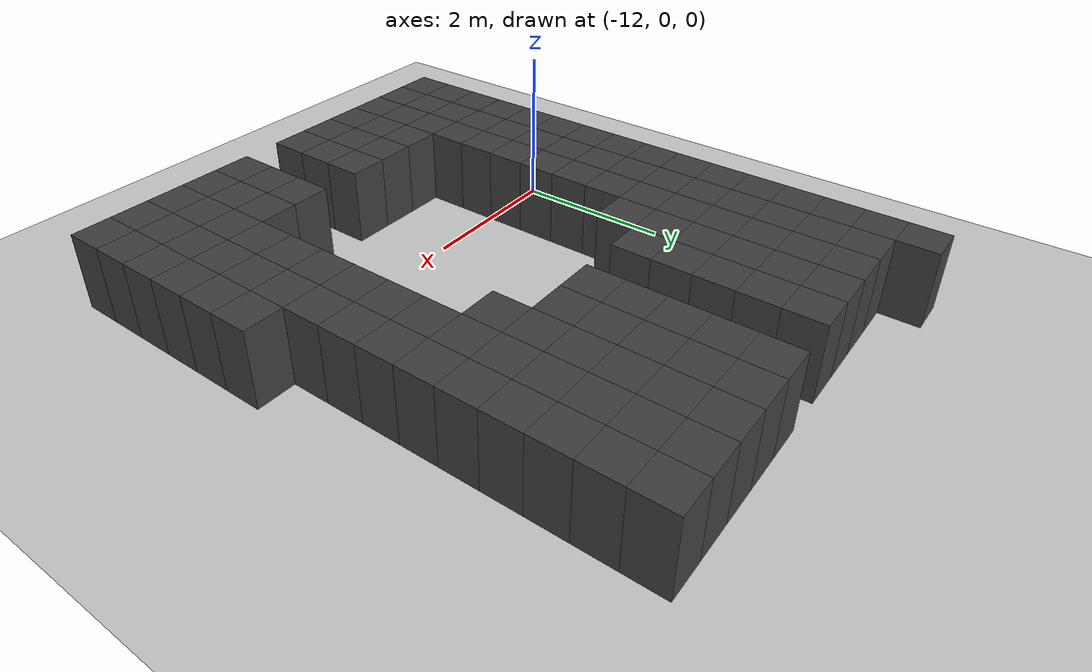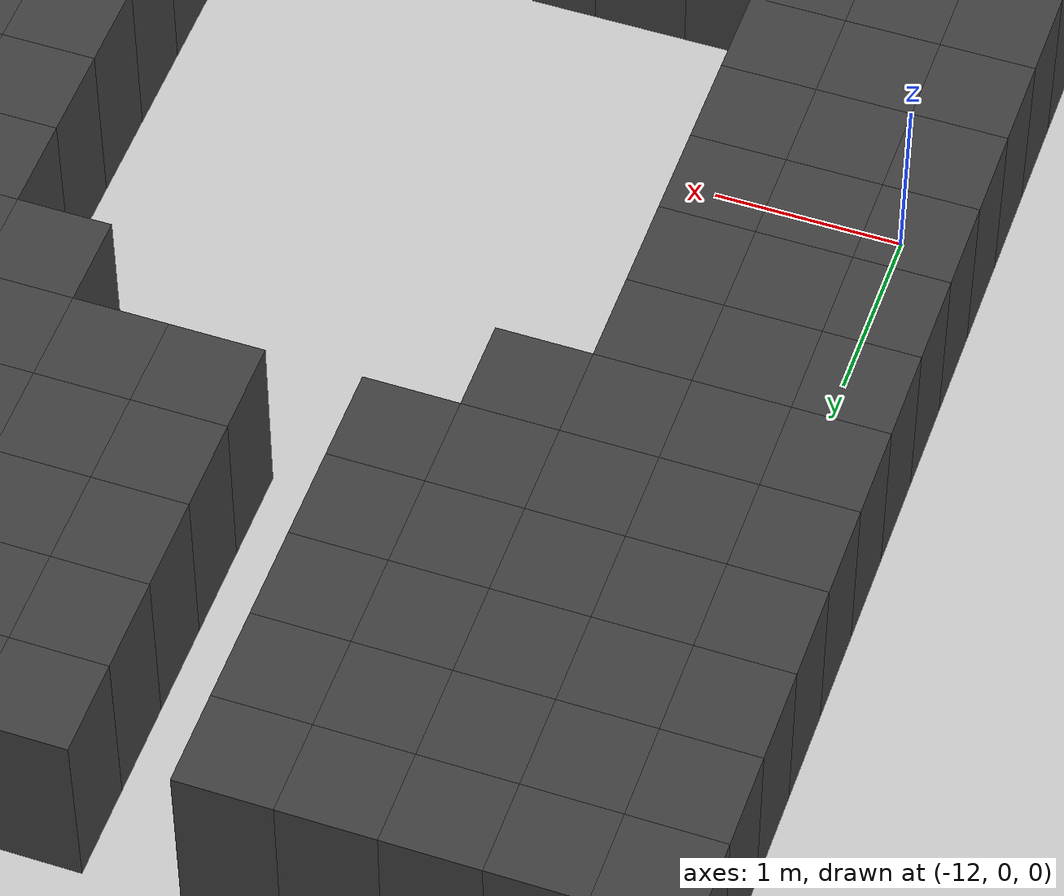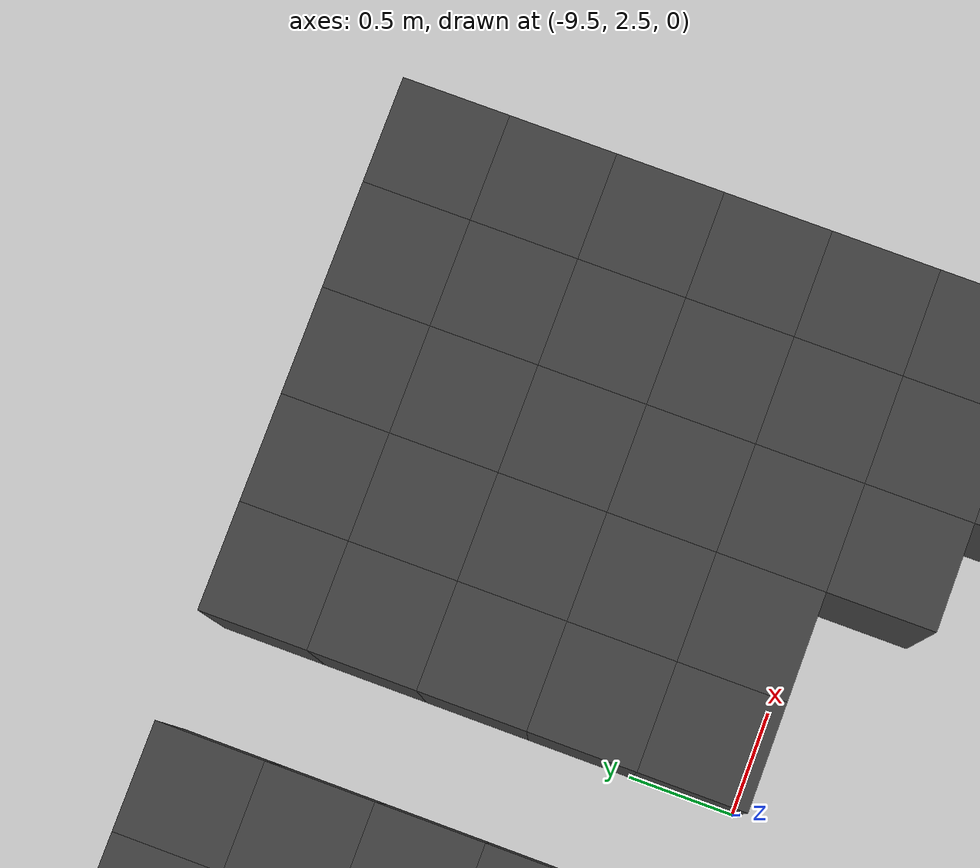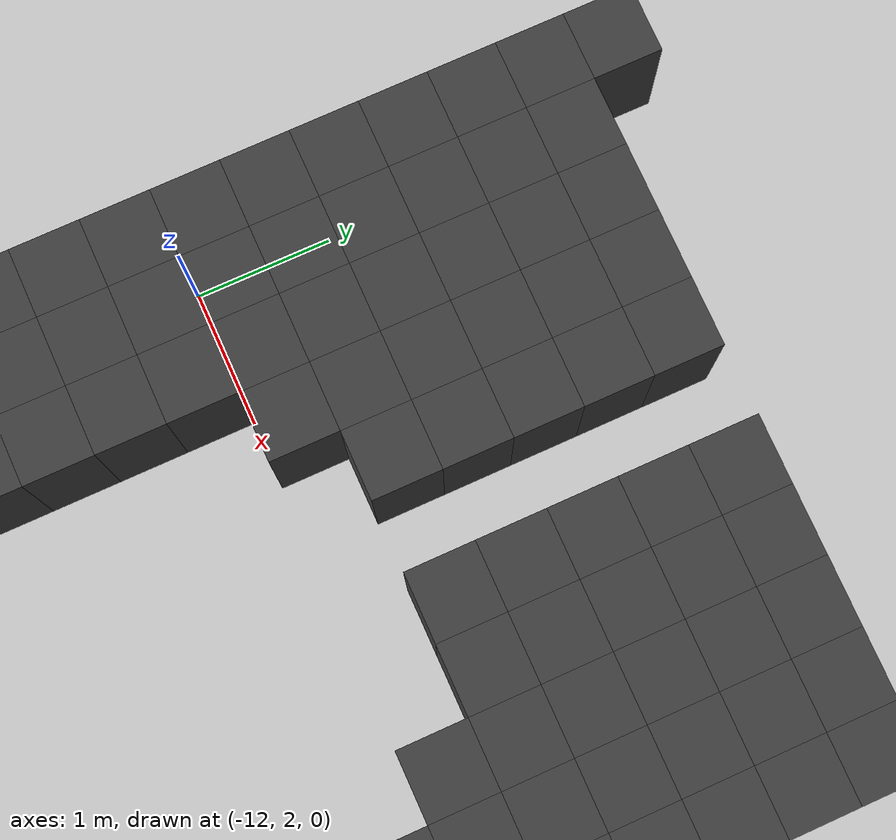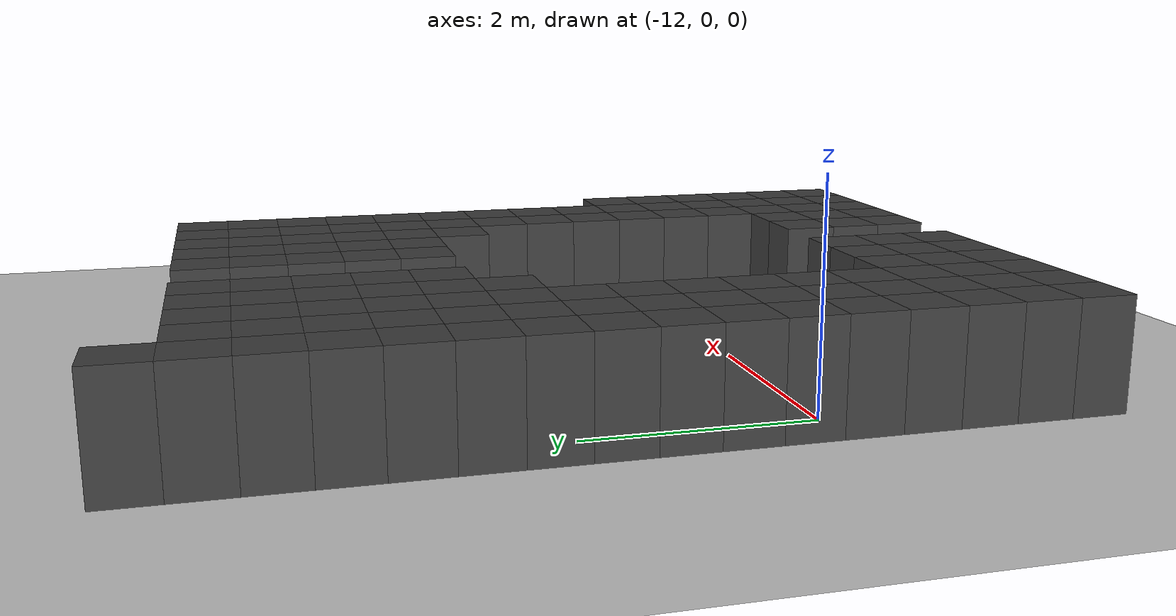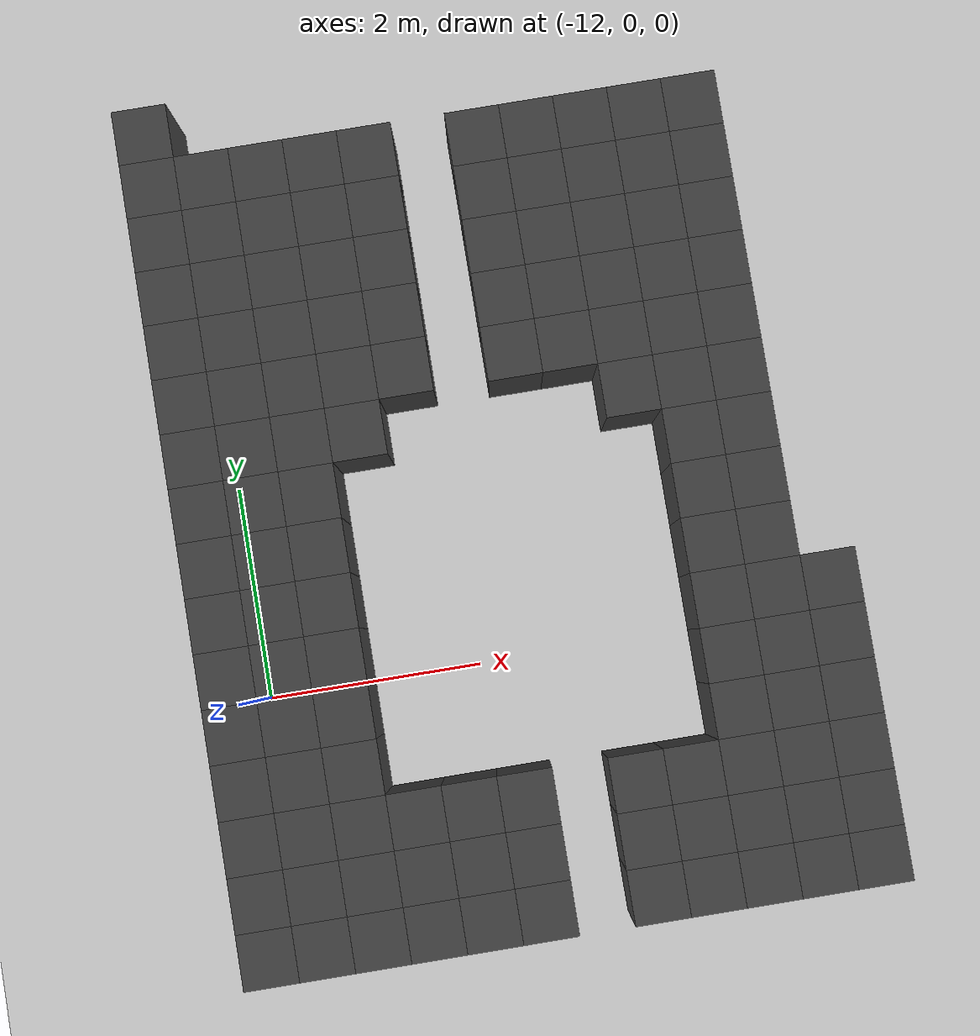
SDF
<sdf version="1.7">
 <world name="map_14802">
  <model name="ground_plane">
   <static>true</static>
   <link name="link">
    <collision name="collision">
     <geometry><plane><normal>0 0 1</normal><size>200 200</size></plane></geometry>
    </collision>
    <visual name="visual">
     <geometry><plane><normal>0 0 1</normal><size>200 200</size></plane></geometry>
     <material><ambient>0.8 0.8 0.8 1</ambient><diffuse>0.8 0.8 0.8 1</diffuse></material>
    </visual>
   </link>
  </model>
  <model name="maze_environment">
   <static>true</static>
   <link name="wall_486">
    <pose>-12.250 5.250 0.500 0 0 0</pose>
    <collision name="col"><geometry><box><size>0.5 0.5 1.0</size></box></geometry></collision>
    <visual name="vis">
     <geometry><box><size>0.5 0.5 1.0</size></box></geometry>
     <material><ambient>0.15 0.15 0.15 1</ambient><diffuse>0.25 0.25 0.25 1</diffuse></material>
    </visual>
   </link>
   <link name="wall_526">
    <pose>-12.250 4.750 0.500 0 0 0</pose>
    <collision name="col"><geometry><box><size>0.5 0.5 1.0</size></box></geometry></collision>
    <visual name="vis">
     <geometry><box><size>0.5 0.5 1.0</size></box></geometry>
     <material><ambient>0.15 0.15 0.15 1</ambient><diffuse>0.25 0.25 0.25 1</diffuse></material>
    </visual>
   </link>
   <link name="wall_527">
    <pose>-11.750 4.750 0.500 0 0 0</pose>
    <collision name="col"><geometry><box><size>0.5 0.5 1.0</size></box></geometry></collision>
    <visual name="vis">
     <geometry><box><size>0.5 0.5 1.0</size></box></geometry>
     <material><ambient>0.15 0.15 0.15 1</ambient><diffuse>0.25 0.25 0.25 1</diffuse></material>
    </visual>
   </link>
   <link name="wall_528">
    <pose>-11.250 4.750 0.500 0 0 0</pose>
    <collision name="col"><geometry><box><size>0.5 0.5 1.0</size></box></geometry></collision>
    <visual name="vis">
     <geometry><box><size>0.5 0.5 1.0</size></box></geometry>
     <material><ambient>0.15 0.15 0.15 1</ambient><diffuse>0.25 0.25 0.25 1</diffuse></material>
    </visual>
   </link>
   <link name="wall_529">
    <pose>-10.750 4.750 0.500 0 0 0</pose>
    <collision name="col"><geometry><box><size>0.5 0.5 1.0</size></box></geometry></collision>
    <visual name="vis">
     <geometry><box><size>0.5 0.5 1.0</size></box></geometry>
     <material><ambient>0.15 0.15 0.15 1</ambient><diffuse>0.25 0.25 0.25 1</diffuse></material>
    </visual>
   </link>
   <link name="wall_530">
    <pose>-10.250 4.750 0.500 0 0 0</pose>
    <collision name="col"><geometry><box><size>0.5 0.5 1.0</size></box></geometry></collision>
    <visual name="vis">
     <geometry><box><size>0.5 0.5 1.0</size></box></geometry>
     <material><ambient>0.15 0.15 0.15 1</ambient><diffuse>0.25 0.25 0.25 1</diffuse></material>
    </visual>
   </link>
   <link name="wall_531">
    <pose>-9.250 4.750 0.500 0 0 0</pose>
    <collision name="col"><geometry><box><size>0.5 0.5 1.0</size></box></geometry></collision>
    <visual name="vis">
     <geometry><box><size>0.5 0.5 1.0</size></box></geometry>
     <material><ambient>0.15 0.15 0.15 1</ambient><diffuse>0.25 0.25 0.25 1</diffuse></material>
    </visual>
   </link>
   <link name="wall_532">
    <pose>-8.750 4.750 0.500 0 0 0</pose>
    <collision name="col"><geometry><box><size>0.5 0.5 1.0</size></box></geometry></collision>
    <visual name="vis">
     <geometry><box><size>0.5 0.5 1.0</size></box></geometry>
     <material><ambient>0.15 0.15 0.15 1</ambient><diffuse>0.25 0.25 0.25 1</diffuse></material>
    </visual>
   </link>
   <link name="wall_533">
    <pose>-8.250 4.750 0.500 0 0 0</pose>
    <collision name="col"><geometry><box><size>0.5 0.5 1.0</size></box></geometry></collision>
    <visual name="vis">
     <geometry><box><size>0.5 0.5 1.0</size></box></geometry>
     <material><ambient>0.15 0.15 0.15 1</ambient><diffuse>0.25 0.25 0.25 1</diffuse></material>
    </visual>
   </link>
   <link name="wall_534">
    <pose>-7.750 4.750 0.500 0 0 0</pose>
    <collision name="col"><geometry><box><size>0.5 0.5 1.0</size></box></geometry></collision>
    <visual name="vis">
     <geometry><box><size>0.5 0.5 1.0</size></box></geometry>
     <material><ambient>0.15 0.15 0.15 1</ambient><diffuse>0.25 0.25 0.25 1</diffuse></material>
    </visual>
   </link>
   <link name="wall_535">
    <pose>-7.250 4.750 0.500 0 0 0</pose>
    <collision name="col"><geometry><box><size>0.5 0.5 1.0</size></box></geometry></collision>
    <visual name="vis">
     <geometry><box><size>0.5 0.5 1.0</size></box></geometry>
     <material><ambient>0.15 0.15 0.15 1</ambient><diffuse>0.25 0.25 0.25 1</diffuse></material>
    </visual>
   </link>
   <link name="wall_566">
    <pose>-12.250 4.250 0.500 0 0 0</pose>
    <collision name="col"><geometry><box><size>0.5 0.5 1.0</size></box></geometry></collision>
    <visual name="vis">
     <geometry><box><size>0.5 0.5 1.0</size></box></geometry>
     <material><ambient>0.15 0.15 0.15 1</ambient><diffuse>0.25 0.25 0.25 1</diffuse></material>
    </visual>
   </link>
   <link name="wall_567">
    <pose>-11.750 4.250 0.500 0 0 0</pose>
    <collision name="col"><geometry><box><size>0.5 0.5 1.0</size></box></geometry></collision>
    <visual name="vis">
     <geometry><box><size>0.5 0.5 1.0</size></box></geometry>
     <material><ambient>0.15 0.15 0.15 1</ambient><diffuse>0.25 0.25 0.25 1</diffuse></material>
    </visual>
   </link>
   <link name="wall_568">
    <pose>-11.250 4.250 0.500 0 0 0</pose>
    <collision name="col"><geometry><box><size>0.5 0.5 1.0</size></box></geometry></collision>
    <visual name="vis">
     <geometry><box><size>0.5 0.5 1.0</size></box></geometry>
     <material><ambient>0.15 0.15 0.15 1</ambient><diffuse>0.25 0.25 0.25 1</diffuse></material>
    </visual>
   </link>
   <link name="wall_569">
    <pose>-10.750 4.250 0.500 0 0 0</pose>
    <collision name="col"><geometry><box><size>0.5 0.5 1.0</size></box></geometry></collision>
    <visual name="vis">
     <geometry><box><size>0.5 0.5 1.0</size></box></geometry>
     <material><ambient>0.15 0.15 0.15 1</ambient><diffuse>0.25 0.25 0.25 1</diffuse></material>
    </visual>
   </link>
   <link name="wall_570">
    <pose>-10.250 4.250 0.500 0 0 0</pose>
    <collision name="col"><geometry><box><size>0.5 0.5 1.0</size></box></geometry></collision>
    <visual name="vis">
     <geometry><box><size>0.5 0.5 1.0</size></box></geometry>
     <material><ambient>0.15 0.15 0.15 1</ambient><diffuse>0.25 0.25 0.25 1</diffuse></material>
    </visual>
   </link>
   <link name="wall_571">
    <pose>-9.250 4.250 0.500 0 0 0</pose>
    <collision name="col"><geometry><box><size>0.5 0.5 1.0</size></box></geometry></collision>
    <visual name="vis">
     <geometry><box><size>0.5 0.5 1.0</size></box></geometry>
     <material><ambient>0.15 0.15 0.15 1</ambient><diffuse>0.25 0.25 0.25 1</diffuse></material>
    </visual>
   </link>
   <link name="wall_572">
    <pose>-8.750 4.250 0.500 0 0 0</pose>
    <collision name="col"><geometry><box><size>0.5 0.5 1.0</size></box></geometry></collision>
    <visual name="vis">
     <geometry><box><size>0.5 0.5 1.0</size></box></geometry>
     <material><ambient>0.15 0.15 0.15 1</ambient><diffuse>0.25 0.25 0.25 1</diffuse></material>
    </visual>
   </link>
   <link name="wall_573">
    <pose>-8.250 4.250 0.500 0 0 0</pose>
    <collision name="col"><geometry><box><size>0.5 0.5 1.0</size></box></geometry></collision>
    <visual name="vis">
     <geometry><box><size>0.5 0.5 1.0</size></box></geometry>
     <material><ambient>0.15 0.15 0.15 1</ambient><diffuse>0.25 0.25 0.25 1</diffuse></material>
    </visual>
   </link>
   <link name="wall_574">
    <pose>-7.750 4.250 0.500 0 0 0</pose>
    <collision name="col"><geometry><box><size>0.5 0.5 1.0</size></box></geometry></collision>
    <visual name="vis">
     <geometry><box><size>0.5 0.5 1.0</size></box></geometry>
     <material><ambient>0.15 0.15 0.15 1</ambient><diffuse>0.25 0.25 0.25 1</diffuse></material>
    </visual>
   </link>
   <link name="wall_575">
    <pose>-7.250 4.250 0.500 0 0 0</pose>
    <collision name="col"><geometry><box><size>0.5 0.5 1.0</size></box></geometry></collision>
    <visual name="vis">
     <geometry><box><size>0.5 0.5 1.0</size></box></geometry>
     <material><ambient>0.15 0.15 0.15 1</ambient><diffuse>0.25 0.25 0.25 1</diffuse></material>
    </visual>
   </link>
   <link name="wall_606">
    <pose>-12.250 3.750 0.500 0 0 0</pose>
    <collision name="col"><geometry><box><size>0.5 0.5 1.0</size></box></geometry></collision>
    <visual name="vis">
     <geometry><box><size>0.5 0.5 1.0</size></box></geometry>
     <material><ambient>0.15 0.15 0.15 1</ambient><diffuse>0.25 0.25 0.25 1</diffuse></material>
    </visual>
   </link>
   <link name="wall_607">
    <pose>-11.750 3.750 0.500 0 0 0</pose>
    <collision name="col"><geometry><box><size>0.5 0.5 1.0</size></box></geometry></collision>
    <visual name="vis">
     <geometry><box><size>0.5 0.5 1.0</size></box></geometry>
     <material><ambient>0.15 0.15 0.15 1</ambient><diffuse>0.25 0.25 0.25 1</diffuse></material>
    </visual>
   </link>
   <link name="wall_608">
    <pose>-11.250 3.750 0.500 0 0 0</pose>
    <collision name="col"><geometry><box><size>0.5 0.5 1.0</size></box></geometry></collision>
    <visual name="vis">
     <geometry><box><size>0.5 0.5 1.0</size></box></geometry>
     <material><ambient>0.15 0.15 0.15 1</ambient><diffuse>0.25 0.25 0.25 1</diffuse></material>
    </visual>
   </link>
   <link name="wall_609">
    <pose>-10.750 3.750 0.500 0 0 0</pose>
    <collision name="col"><geometry><box><size>0.5 0.5 1.0</size></box></geometry></collision>
    <visual name="vis">
     <geometry><box><size>0.5 0.5 1.0</size></box></geometry>
     <material><ambient>0.15 0.15 0.15 1</ambient><diffuse>0.25 0.25 0.25 1</diffuse></material>
    </visual>
   </link>
   <link name="wall_610">
    <pose>-10.250 3.750 0.500 0 0 0</pose>
    <collision name="col"><geometry><box><size>0.5 0.5 1.0</size></box></geometry></collision>
    <visual name="vis">
     <geometry><box><size>0.5 0.5 1.0</size></box></geometry>
     <material><ambient>0.15 0.15 0.15 1</ambient><diffuse>0.25 0.25 0.25 1</diffuse></material>
    </visual>
   </link>
   <link name="wall_611">
    <pose>-9.250 3.750 0.500 0 0 0</pose>
    <collision name="col"><geometry><box><size>0.5 0.5 1.0</size></box></geometry></collision>
    <visual name="vis">
     <geometry><box><size>0.5 0.5 1.0</size></box></geometry>
     <material><ambient>0.15 0.15 0.15 1</ambient><diffuse>0.25 0.25 0.25 1</diffuse></material>
    </visual>
   </link>
   <link name="wall_612">
    <pose>-8.750 3.750 0.500 0 0 0</pose>
    <collision name="col"><geometry><box><size>0.5 0.5 1.0</size></box></geometry></collision>
    <visual name="vis">
     <geometry><box><size>0.5 0.5 1.0</size></box></geometry>
     <material><ambient>0.15 0.15 0.15 1</ambient><diffuse>0.25 0.25 0.25 1</diffuse></material>
    </visual>
   </link>
   <link name="wall_613">
    <pose>-8.250 3.750 0.500 0 0 0</pose>
    <collision name="col"><geometry><box><size>0.5 0.5 1.0</size></box></geometry></collision>
    <visual name="vis">
     <geometry><box><size>0.5 0.5 1.0</size></box></geometry>
     <material><ambient>0.15 0.15 0.15 1</ambient><diffuse>0.25 0.25 0.25 1</diffuse></material>
    </visual>
   </link>
   <link name="wall_614">
    <pose>-7.750 3.750 0.500 0 0 0</pose>
    <collision name="col"><geometry><box><size>0.5 0.5 1.0</size></box></geometry></collision>
    <visual name="vis">
     <geometry><box><size>0.5 0.5 1.0</size></box></geometry>
     <material><ambient>0.15 0.15 0.15 1</ambient><diffuse>0.25 0.25 0.25 1</diffuse></material>
    </visual>
   </link>
   <link name="wall_615">
    <pose>-7.250 3.750 0.500 0 0 0</pose>
    <collision name="col"><geometry><box><size>0.5 0.5 1.0</size></box></geometry></collision>
    <visual name="vis">
     <geometry><box><size>0.5 0.5 1.0</size></box></geometry>
     <material><ambient>0.15 0.15 0.15 1</ambient><diffuse>0.25 0.25 0.25 1</diffuse></material>
    </visual>
   </link>
   <link name="wall_646">
    <pose>-12.250 3.250 0.500 0 0 0</pose>
    <collision name="col"><geometry><box><size>0.5 0.5 1.0</size></box></geometry></collision>
    <visual name="vis">
     <geometry><box><size>0.5 0.5 1.0</size></box></geometry>
     <material><ambient>0.15 0.15 0.15 1</ambient><diffuse>0.25 0.25 0.25 1</diffuse></material>
    </visual>
   </link>
   <link name="wall_647">
    <pose>-11.750 3.250 0.500 0 0 0</pose>
    <collision name="col"><geometry><box><size>0.5 0.5 1.0</size></box></geometry></collision>
    <visual name="vis">
     <geometry><box><size>0.5 0.5 1.0</size></box></geometry>
     <material><ambient>0.15 0.15 0.15 1</ambient><diffuse>0.25 0.25 0.25 1</diffuse></material>
    </visual>
   </link>
   <link name="wall_648">
    <pose>-11.250 3.250 0.500 0 0 0</pose>
    <collision name="col"><geometry><box><size>0.5 0.5 1.0</size></box></geometry></collision>
    <visual name="vis">
     <geometry><box><size>0.5 0.5 1.0</size></box></geometry>
     <material><ambient>0.15 0.15 0.15 1</ambient><diffuse>0.25 0.25 0.25 1</diffuse></material>
    </visual>
   </link>
   <link name="wall_649">
    <pose>-10.750 3.250 0.500 0 0 0</pose>
    <collision name="col"><geometry><box><size>0.5 0.5 1.0</size></box></geometry></collision>
    <visual name="vis">
     <geometry><box><size>0.5 0.5 1.0</size></box></geometry>
     <material><ambient>0.15 0.15 0.15 1</ambient><diffuse>0.25 0.25 0.25 1</diffuse></material>
    </visual>
   </link>
   <link name="wall_650">
    <pose>-10.250 3.250 0.500 0 0 0</pose>
    <collision name="col"><geometry><box><size>0.5 0.5 1.0</size></box></geometry></collision>
    <visual name="vis">
     <geometry><box><size>0.5 0.5 1.0</size></box></geometry>
     <material><ambient>0.15 0.15 0.15 1</ambient><diffuse>0.25 0.25 0.25 1</diffuse></material>
    </visual>
   </link>
   <link name="wall_651">
    <pose>-9.250 3.250 0.500 0 0 0</pose>
    <collision name="col"><geometry><box><size>0.5 0.5 1.0</size></box></geometry></collision>
    <visual name="vis">
     <geometry><box><size>0.5 0.5 1.0</size></box></geometry>
     <material><ambient>0.15 0.15 0.15 1</ambient><diffuse>0.25 0.25 0.25 1</diffuse></material>
    </visual>
   </link>
   <link name="wall_652">
    <pose>-8.750 3.250 0.500 0 0 0</pose>
    <collision name="col"><geometry><box><size>0.5 0.5 1.0</size></box></geometry></collision>
    <visual name="vis">
     <geometry><box><size>0.5 0.5 1.0</size></box></geometry>
     <material><ambient>0.15 0.15 0.15 1</ambient><diffuse>0.25 0.25 0.25 1</diffuse></material>
    </visual>
   </link>
   <link name="wall_653">
    <pose>-8.250 3.250 0.500 0 0 0</pose>
    <collision name="col"><geometry><box><size>0.5 0.5 1.0</size></box></geometry></collision>
    <visual name="vis">
     <geometry><box><size>0.5 0.5 1.0</size></box></geometry>
     <material><ambient>0.15 0.15 0.15 1</ambient><diffuse>0.25 0.25 0.25 1</diffuse></material>
    </visual>
   </link>
   <link name="wall_654">
    <pose>-7.750 3.250 0.500 0 0 0</pose>
    <collision name="col"><geometry><box><size>0.5 0.5 1.0</size></box></geometry></collision>
    <visual name="vis">
     <geometry><box><size>0.5 0.5 1.0</size></box></geometry>
     <material><ambient>0.15 0.15 0.15 1</ambient><diffuse>0.25 0.25 0.25 1</diffuse></material>
    </visual>
   </link>
   <link name="wall_655">
    <pose>-7.250 3.250 0.500 0 0 0</pose>
    <collision name="col"><geometry><box><size>0.5 0.5 1.0</size></box></geometry></collision>
    <visual name="vis">
     <geometry><box><size>0.5 0.5 1.0</size></box></geometry>
     <material><ambient>0.15 0.15 0.15 1</ambient><diffuse>0.25 0.25 0.25 1</diffuse></material>
    </visual>
   </link>
   <link name="wall_687">
    <pose>-12.250 2.750 0.500 0 0 0</pose>
    <collision name="col"><geometry><box><size>0.5 0.5 1.0</size></box></geometry></collision>
    <visual name="vis">
     <geometry><box><size>0.5 0.5 1.0</size></box></geometry>
     <material><ambient>0.15 0.15 0.15 1</ambient><diffuse>0.25 0.25 0.25 1</diffuse></material>
    </visual>
   </link>
   <link name="wall_688">
    <pose>-11.750 2.750 0.500 0 0 0</pose>
    <collision name="col"><geometry><box><size>0.5 0.5 1.0</size></box></geometry></collision>
    <visual name="vis">
     <geometry><box><size>0.5 0.5 1.0</size></box></geometry>
     <material><ambient>0.15 0.15 0.15 1</ambient><diffuse>0.25 0.25 0.25 1</diffuse></material>
    </visual>
   </link>
   <link name="wall_689">
    <pose>-11.250 2.750 0.500 0 0 0</pose>
    <collision name="col"><geometry><box><size>0.5 0.5 1.0</size></box></geometry></collision>
    <visual name="vis">
     <geometry><box><size>0.5 0.5 1.0</size></box></geometry>
     <material><ambient>0.15 0.15 0.15 1</ambient><diffuse>0.25 0.25 0.25 1</diffuse></material>
    </visual>
   </link>
   <link name="wall_690">
    <pose>-10.750 2.750 0.500 0 0 0</pose>
    <collision name="col"><geometry><box><size>0.5 0.5 1.0</size></box></geometry></collision>
    <visual name="vis">
     <geometry><box><size>0.5 0.5 1.0</size></box></geometry>
     <material><ambient>0.15 0.15 0.15 1</ambient><diffuse>0.25 0.25 0.25 1</diffuse></material>
    </visual>
   </link>
   <link name="wall_691">
    <pose>-10.250 2.750 0.500 0 0 0</pose>
    <collision name="col"><geometry><box><size>0.5 0.5 1.0</size></box></geometry></collision>
    <visual name="vis">
     <geometry><box><size>0.5 0.5 1.0</size></box></geometry>
     <material><ambient>0.15 0.15 0.15 1</ambient><diffuse>0.25 0.25 0.25 1</diffuse></material>
    </visual>
   </link>
   <link name="wall_692">
    <pose>-9.250 2.750 0.500 0 0 0</pose>
    <collision name="col"><geometry><box><size>0.5 0.5 1.0</size></box></geometry></collision>
    <visual name="vis">
     <geometry><box><size>0.5 0.5 1.0</size></box></geometry>
     <material><ambient>0.15 0.15 0.15 1</ambient><diffuse>0.25 0.25 0.25 1</diffuse></material>
    </visual>
   </link>
   <link name="wall_693">
    <pose>-8.750 2.750 0.500 0 0 0</pose>
    <collision name="col"><geometry><box><size>0.5 0.5 1.0</size></box></geometry></collision>
    <visual name="vis">
     <geometry><box><size>0.5 0.5 1.0</size></box></geometry>
     <material><ambient>0.15 0.15 0.15 1</ambient><diffuse>0.25 0.25 0.25 1</diffuse></material>
    </visual>
   </link>
   <link name="wall_694">
    <pose>-8.250 2.750 0.500 0 0 0</pose>
    <collision name="col"><geometry><box><size>0.5 0.5 1.0</size></box></geometry></collision>
    <visual name="vis">
     <geometry><box><size>0.5 0.5 1.0</size></box></geometry>
     <material><ambient>0.15 0.15 0.15 1</ambient><diffuse>0.25 0.25 0.25 1</diffuse></material>
    </visual>
   </link>
   <link name="wall_695">
    <pose>-7.750 2.750 0.500 0 0 0</pose>
    <collision name="col"><geometry><box><size>0.5 0.5 1.0</size></box></geometry></collision>
    <visual name="vis">
     <geometry><box><size>0.5 0.5 1.0</size></box></geometry>
     <material><ambient>0.15 0.15 0.15 1</ambient><diffuse>0.25 0.25 0.25 1</diffuse></material>
    </visual>
   </link>
   <link name="wall_696">
    <pose>-7.250 2.750 0.500 0 0 0</pose>
    <collision name="col"><geometry><box><size>0.5 0.5 1.0</size></box></geometry></collision>
    <visual name="vis">
     <geometry><box><size>0.5 0.5 1.0</size></box></geometry>
     <material><ambient>0.15 0.15 0.15 1</ambient><diffuse>0.25 0.25 0.25 1</diffuse></material>
    </visual>
   </link>
   <link name="wall_727">
    <pose>-12.250 2.250 0.500 0 0 0</pose>
    <collision name="col"><geometry><box><size>0.5 0.5 1.0</size></box></geometry></collision>
    <visual name="vis">
     <geometry><box><size>0.5 0.5 1.0</size></box></geometry>
     <material><ambient>0.15 0.15 0.15 1</ambient><diffuse>0.25 0.25 0.25 1</diffuse></material>
    </visual>
   </link>
   <link name="wall_728">
    <pose>-11.750 2.250 0.500 0 0 0</pose>
    <collision name="col"><geometry><box><size>0.5 0.5 1.0</size></box></geometry></collision>
    <visual name="vis">
     <geometry><box><size>0.5 0.5 1.0</size></box></geometry>
     <material><ambient>0.15 0.15 0.15 1</ambient><diffuse>0.25 0.25 0.25 1</diffuse></material>
    </visual>
   </link>
   <link name="wall_729">
    <pose>-11.250 2.250 0.500 0 0 0</pose>
    <collision name="col"><geometry><box><size>0.5 0.5 1.0</size></box></geometry></collision>
    <visual name="vis">
     <geometry><box><size>0.5 0.5 1.0</size></box></geometry>
     <material><ambient>0.15 0.15 0.15 1</ambient><diffuse>0.25 0.25 0.25 1</diffuse></material>
    </visual>
   </link>
   <link name="wall_730">
    <pose>-10.750 2.250 0.500 0 0 0</pose>
    <collision name="col"><geometry><box><size>0.5 0.5 1.0</size></box></geometry></collision>
    <visual name="vis">
     <geometry><box><size>0.5 0.5 1.0</size></box></geometry>
     <material><ambient>0.15 0.15 0.15 1</ambient><diffuse>0.25 0.25 0.25 1</diffuse></material>
    </visual>
   </link>
   <link name="wall_731">
    <pose>-8.250 2.250 0.500 0 0 0</pose>
    <collision name="col"><geometry><box><size>0.5 0.5 1.0</size></box></geometry></collision>
    <visual name="vis">
     <geometry><box><size>0.5 0.5 1.0</size></box></geometry>
     <material><ambient>0.15 0.15 0.15 1</ambient><diffuse>0.25 0.25 0.25 1</diffuse></material>
    </visual>
   </link>
   <link name="wall_732">
    <pose>-7.750 2.250 0.500 0 0 0</pose>
    <collision name="col"><geometry><box><size>0.5 0.5 1.0</size></box></geometry></collision>
    <visual name="vis">
     <geometry><box><size>0.5 0.5 1.0</size></box></geometry>
     <material><ambient>0.15 0.15 0.15 1</ambient><diffuse>0.25 0.25 0.25 1</diffuse></material>
    </visual>
   </link>
   <link name="wall_733">
    <pose>-7.250 2.250 0.500 0 0 0</pose>
    <collision name="col"><geometry><box><size>0.5 0.5 1.0</size></box></geometry></collision>
    <visual name="vis">
     <geometry><box><size>0.5 0.5 1.0</size></box></geometry>
     <material><ambient>0.15 0.15 0.15 1</ambient><diffuse>0.25 0.25 0.25 1</diffuse></material>
    </visual>
   </link>
   <link name="wall_766">
    <pose>-12.250 1.750 0.500 0 0 0</pose>
    <collision name="col"><geometry><box><size>0.5 0.5 1.0</size></box></geometry></collision>
    <visual name="vis">
     <geometry><box><size>0.5 0.5 1.0</size></box></geometry>
     <material><ambient>0.15 0.15 0.15 1</ambient><diffuse>0.25 0.25 0.25 1</diffuse></material>
    </visual>
   </link>
   <link name="wall_767">
    <pose>-11.750 1.750 0.500 0 0 0</pose>
    <collision name="col"><geometry><box><size>0.5 0.5 1.0</size></box></geometry></collision>
    <visual name="vis">
     <geometry><box><size>0.5 0.5 1.0</size></box></geometry>
     <material><ambient>0.15 0.15 0.15 1</ambient><diffuse>0.25 0.25 0.25 1</diffuse></material>
    </visual>
   </link>
   <link name="wall_768">
    <pose>-11.250 1.750 0.500 0 0 0</pose>
    <collision name="col"><geometry><box><size>0.5 0.5 1.0</size></box></geometry></collision>
    <visual name="vis">
     <geometry><box><size>0.5 0.5 1.0</size></box></geometry>
     <material><ambient>0.15 0.15 0.15 1</ambient><diffuse>0.25 0.25 0.25 1</diffuse></material>
    </visual>
   </link>
   <link name="wall_769">
    <pose>-7.750 1.750 0.500 0 0 0</pose>
    <collision name="col"><geometry><box><size>0.5 0.5 1.0</size></box></geometry></collision>
    <visual name="vis">
     <geometry><box><size>0.5 0.5 1.0</size></box></geometry>
     <material><ambient>0.15 0.15 0.15 1</ambient><diffuse>0.25 0.25 0.25 1</diffuse></material>
    </visual>
   </link>
   <link name="wall_770">
    <pose>-7.250 1.750 0.500 0 0 0</pose>
    <collision name="col"><geometry><box><size>0.5 0.5 1.0</size></box></geometry></collision>
    <visual name="vis">
     <geometry><box><size>0.5 0.5 1.0</size></box></geometry>
     <material><ambient>0.15 0.15 0.15 1</ambient><diffuse>0.25 0.25 0.25 1</diffuse></material>
    </visual>
   </link>
   <link name="wall_803">
    <pose>-12.250 1.250 0.500 0 0 0</pose>
    <collision name="col"><geometry><box><size>0.5 0.5 1.0</size></box></geometry></collision>
    <visual name="vis">
     <geometry><box><size>0.5 0.5 1.0</size></box></geometry>
     <material><ambient>0.15 0.15 0.15 1</ambient><diffuse>0.25 0.25 0.25 1</diffuse></material>
    </visual>
   </link>
   <link name="wall_804">
    <pose>-11.750 1.250 0.500 0 0 0</pose>
    <collision name="col"><geometry><box><size>0.5 0.5 1.0</size></box></geometry></collision>
    <visual name="vis">
     <geometry><box><size>0.5 0.5 1.0</size></box></geometry>
     <material><ambient>0.15 0.15 0.15 1</ambient><diffuse>0.25 0.25 0.25 1</diffuse></material>
    </visual>
   </link>
   <link name="wall_805">
    <pose>-11.250 1.250 0.500 0 0 0</pose>
    <collision name="col"><geometry><box><size>0.5 0.5 1.0</size></box></geometry></collision>
    <visual name="vis">
     <geometry><box><size>0.5 0.5 1.0</size></box></geometry>
     <material><ambient>0.15 0.15 0.15 1</ambient><diffuse>0.25 0.25 0.25 1</diffuse></material>
    </visual>
   </link>
   <link name="wall_806">
    <pose>-7.750 1.250 0.500 0 0 0</pose>
    <collision name="col"><geometry><box><size>0.5 0.5 1.0</size></box></geometry></collision>
    <visual name="vis">
     <geometry><box><size>0.5 0.5 1.0</size></box></geometry>
     <material><ambient>0.15 0.15 0.15 1</ambient><diffuse>0.25 0.25 0.25 1</diffuse></material>
    </visual>
   </link>
   <link name="wall_807">
    <pose>-7.250 1.250 0.500 0 0 0</pose>
    <collision name="col"><geometry><box><size>0.5 0.5 1.0</size></box></geometry></collision>
    <visual name="vis">
     <geometry><box><size>0.5 0.5 1.0</size></box></geometry>
     <material><ambient>0.15 0.15 0.15 1</ambient><diffuse>0.25 0.25 0.25 1</diffuse></material>
    </visual>
   </link>
   <link name="wall_840">
    <pose>-12.250 0.750 0.500 0 0 0</pose>
    <collision name="col"><geometry><box><size>0.5 0.5 1.0</size></box></geometry></collision>
    <visual name="vis">
     <geometry><box><size>0.5 0.5 1.0</size></box></geometry>
     <material><ambient>0.15 0.15 0.15 1</ambient><diffuse>0.25 0.25 0.25 1</diffuse></material>
    </visual>
   </link>
   <link name="wall_841">
    <pose>-11.750 0.750 0.500 0 0 0</pose>
    <collision name="col"><geometry><box><size>0.5 0.5 1.0</size></box></geometry></collision>
    <visual name="vis">
     <geometry><box><size>0.5 0.5 1.0</size></box></geometry>
     <material><ambient>0.15 0.15 0.15 1</ambient><diffuse>0.25 0.25 0.25 1</diffuse></material>
    </visual>
   </link>
   <link name="wall_842">
    <pose>-11.250 0.750 0.500 0 0 0</pose>
    <collision name="col"><geometry><box><size>0.5 0.5 1.0</size></box></geometry></collision>
    <visual name="vis">
     <geometry><box><size>0.5 0.5 1.0</size></box></geometry>
     <material><ambient>0.15 0.15 0.15 1</ambient><diffuse>0.25 0.25 0.25 1</diffuse></material>
    </visual>
   </link>
   <link name="wall_843">
    <pose>-7.750 0.750 0.500 0 0 0</pose>
    <collision name="col"><geometry><box><size>0.5 0.5 1.0</size></box></geometry></collision>
    <visual name="vis">
     <geometry><box><size>0.5 0.5 1.0</size></box></geometry>
     <material><ambient>0.15 0.15 0.15 1</ambient><diffuse>0.25 0.25 0.25 1</diffuse></material>
    </visual>
   </link>
   <link name="wall_844">
    <pose>-7.250 0.750 0.500 0 0 0</pose>
    <collision name="col"><geometry><box><size>0.5 0.5 1.0</size></box></geometry></collision>
    <visual name="vis">
     <geometry><box><size>0.5 0.5 1.0</size></box></geometry>
     <material><ambient>0.15 0.15 0.15 1</ambient><diffuse>0.25 0.25 0.25 1</diffuse></material>
    </visual>
   </link>
   <link name="wall_871">
    <pose>-12.250 0.250 0.500 0 0 0</pose>
    <collision name="col"><geometry><box><size>0.5 0.5 1.0</size></box></geometry></collision>
    <visual name="vis">
     <geometry><box><size>0.5 0.5 1.0</size></box></geometry>
     <material><ambient>0.15 0.15 0.15 1</ambient><diffuse>0.25 0.25 0.25 1</diffuse></material>
    </visual>
   </link>
   <link name="wall_872">
    <pose>-11.750 0.250 0.500 0 0 0</pose>
    <collision name="col"><geometry><box><size>0.5 0.5 1.0</size></box></geometry></collision>
    <visual name="vis">
     <geometry><box><size>0.5 0.5 1.0</size></box></geometry>
     <material><ambient>0.15 0.15 0.15 1</ambient><diffuse>0.25 0.25 0.25 1</diffuse></material>
    </visual>
   </link>
   <link name="wall_873">
    <pose>-11.250 0.250 0.500 0 0 0</pose>
    <collision name="col"><geometry><box><size>0.5 0.5 1.0</size></box></geometry></collision>
    <visual name="vis">
     <geometry><box><size>0.5 0.5 1.0</size></box></geometry>
     <material><ambient>0.15 0.15 0.15 1</ambient><diffuse>0.25 0.25 0.25 1</diffuse></material>
    </visual>
   </link>
   <link name="wall_874">
    <pose>-7.750 0.250 0.500 0 0 0</pose>
    <collision name="col"><geometry><box><size>0.5 0.5 1.0</size></box></geometry></collision>
    <visual name="vis">
     <geometry><box><size>0.5 0.5 1.0</size></box></geometry>
     <material><ambient>0.15 0.15 0.15 1</ambient><diffuse>0.25 0.25 0.25 1</diffuse></material>
    </visual>
   </link>
   <link name="wall_875">
    <pose>-7.250 0.250 0.500 0 0 0</pose>
    <collision name="col"><geometry><box><size>0.5 0.5 1.0</size></box></geometry></collision>
    <visual name="vis">
     <geometry><box><size>0.5 0.5 1.0</size></box></geometry>
     <material><ambient>0.15 0.15 0.15 1</ambient><diffuse>0.25 0.25 0.25 1</diffuse></material>
    </visual>
   </link>
   <link name="wall_876">
    <pose>-6.750 0.250 0.500 0 0 0</pose>
    <collision name="col"><geometry><box><size>0.5 0.5 1.0</size></box></geometry></collision>
    <visual name="vis">
     <geometry><box><size>0.5 0.5 1.0</size></box></geometry>
     <material><ambient>0.15 0.15 0.15 1</ambient><diffuse>0.25 0.25 0.25 1</diffuse></material>
    </visual>
   </link>
   <link name="wall_902">
    <pose>-12.250 -0.250 0.500 0 0 0</pose>
    <collision name="col"><geometry><box><size>0.5 0.5 1.0</size></box></geometry></collision>
    <visual name="vis">
     <geometry><box><size>0.5 0.5 1.0</size></box></geometry>
     <material><ambient>0.15 0.15 0.15 1</ambient><diffuse>0.25 0.25 0.25 1</diffuse></material>
    </visual>
   </link>
   <link name="wall_903">
    <pose>-11.750 -0.250 0.500 0 0 0</pose>
    <collision name="col"><geometry><box><size>0.5 0.5 1.0</size></box></geometry></collision>
    <visual name="vis">
     <geometry><box><size>0.5 0.5 1.0</size></box></geometry>
     <material><ambient>0.15 0.15 0.15 1</ambient><diffuse>0.25 0.25 0.25 1</diffuse></material>
    </visual>
   </link>
   <link name="wall_904">
    <pose>-11.250 -0.250 0.500 0 0 0</pose>
    <collision name="col"><geometry><box><size>0.5 0.5 1.0</size></box></geometry></collision>
    <visual name="vis">
     <geometry><box><size>0.5 0.5 1.0</size></box></geometry>
     <material><ambient>0.15 0.15 0.15 1</ambient><diffuse>0.25 0.25 0.25 1</diffuse></material>
    </visual>
   </link>
   <link name="wall_905">
    <pose>-7.750 -0.250 0.500 0 0 0</pose>
    <collision name="col"><geometry><box><size>0.5 0.5 1.0</size></box></geometry></collision>
    <visual name="vis">
     <geometry><box><size>0.5 0.5 1.0</size></box></geometry>
     <material><ambient>0.15 0.15 0.15 1</ambient><diffuse>0.25 0.25 0.25 1</diffuse></material>
    </visual>
   </link>
   <link name="wall_906">
    <pose>-7.250 -0.250 0.500 0 0 0</pose>
    <collision name="col"><geometry><box><size>0.5 0.5 1.0</size></box></geometry></collision>
    <visual name="vis">
     <geometry><box><size>0.5 0.5 1.0</size></box></geometry>
     <material><ambient>0.15 0.15 0.15 1</ambient><diffuse>0.25 0.25 0.25 1</diffuse></material>
    </visual>
   </link>
   <link name="wall_907">
    <pose>-6.750 -0.250 0.500 0 0 0</pose>
    <collision name="col"><geometry><box><size>0.5 0.5 1.0</size></box></geometry></collision>
    <visual name="vis">
     <geometry><box><size>0.5 0.5 1.0</size></box></geometry>
     <material><ambient>0.15 0.15 0.15 1</ambient><diffuse>0.25 0.25 0.25 1</diffuse></material>
    </visual>
   </link>
   <link name="wall_940">
    <pose>-12.250 -0.750 0.500 0 0 0</pose>
    <collision name="col"><geometry><box><size>0.5 0.5 1.0</size></box></geometry></collision>
    <visual name="vis">
     <geometry><box><size>0.5 0.5 1.0</size></box></geometry>
     <material><ambient>0.15 0.15 0.15 1</ambient><diffuse>0.25 0.25 0.25 1</diffuse></material>
    </visual>
   </link>
   <link name="wall_941">
    <pose>-11.750 -0.750 0.500 0 0 0</pose>
    <collision name="col"><geometry><box><size>0.5 0.5 1.0</size></box></geometry></collision>
    <visual name="vis">
     <geometry><box><size>0.5 0.5 1.0</size></box></geometry>
     <material><ambient>0.15 0.15 0.15 1</ambient><diffuse>0.25 0.25 0.25 1</diffuse></material>
    </visual>
   </link>
   <link name="wall_942">
    <pose>-11.250 -0.750 0.500 0 0 0</pose>
    <collision name="col"><geometry><box><size>0.5 0.5 1.0</size></box></geometry></collision>
    <visual name="vis">
     <geometry><box><size>0.5 0.5 1.0</size></box></geometry>
     <material><ambient>0.15 0.15 0.15 1</ambient><diffuse>0.25 0.25 0.25 1</diffuse></material>
    </visual>
   </link>
   <link name="wall_943">
    <pose>-7.750 -0.750 0.500 0 0 0</pose>
    <collision name="col"><geometry><box><size>0.5 0.5 1.0</size></box></geometry></collision>
    <visual name="vis">
     <geometry><box><size>0.5 0.5 1.0</size></box></geometry>
     <material><ambient>0.15 0.15 0.15 1</ambient><diffuse>0.25 0.25 0.25 1</diffuse></material>
    </visual>
   </link>
   <link name="wall_944">
    <pose>-7.250 -0.750 0.500 0 0 0</pose>
    <collision name="col"><geometry><box><size>0.5 0.5 1.0</size></box></geometry></collision>
    <visual name="vis">
     <geometry><box><size>0.5 0.5 1.0</size></box></geometry>
     <material><ambient>0.15 0.15 0.15 1</ambient><diffuse>0.25 0.25 0.25 1</diffuse></material>
    </visual>
   </link>
   <link name="wall_945">
    <pose>-6.750 -0.750 0.500 0 0 0</pose>
    <collision name="col"><geometry><box><size>0.5 0.5 1.0</size></box></geometry></collision>
    <visual name="vis">
     <geometry><box><size>0.5 0.5 1.0</size></box></geometry>
     <material><ambient>0.15 0.15 0.15 1</ambient><diffuse>0.25 0.25 0.25 1</diffuse></material>
    </visual>
   </link>
   <link name="wall_968">
    <pose>-12.250 -1.250 0.500 0 0 0</pose>
    <collision name="col"><geometry><box><size>0.5 0.5 1.0</size></box></geometry></collision>
    <visual name="vis">
     <geometry><box><size>0.5 0.5 1.0</size></box></geometry>
     <material><ambient>0.15 0.15 0.15 1</ambient><diffuse>0.25 0.25 0.25 1</diffuse></material>
    </visual>
   </link>
   <link name="wall_969">
    <pose>-11.750 -1.250 0.500 0 0 0</pose>
    <collision name="col"><geometry><box><size>0.5 0.5 1.0</size></box></geometry></collision>
    <visual name="vis">
     <geometry><box><size>0.5 0.5 1.0</size></box></geometry>
     <material><ambient>0.15 0.15 0.15 1</ambient><diffuse>0.25 0.25 0.25 1</diffuse></material>
    </visual>
   </link>
   <link name="wall_970">
    <pose>-11.250 -1.250 0.500 0 0 0</pose>
    <collision name="col"><geometry><box><size>0.5 0.5 1.0</size></box></geometry></collision>
    <visual name="vis">
     <geometry><box><size>0.5 0.5 1.0</size></box></geometry>
     <material><ambient>0.15 0.15 0.15 1</ambient><diffuse>0.25 0.25 0.25 1</diffuse></material>
    </visual>
   </link>
   <link name="wall_971">
    <pose>-10.750 -1.250 0.500 0 0 0</pose>
    <collision name="col"><geometry><box><size>0.5 0.5 1.0</size></box></geometry></collision>
    <visual name="vis">
     <geometry><box><size>0.5 0.5 1.0</size></box></geometry>
     <material><ambient>0.15 0.15 0.15 1</ambient><diffuse>0.25 0.25 0.25 1</diffuse></material>
    </visual>
   </link>
   <link name="wall_972">
    <pose>-10.250 -1.250 0.500 0 0 0</pose>
    <collision name="col"><geometry><box><size>0.5 0.5 1.0</size></box></geometry></collision>
    <visual name="vis">
     <geometry><box><size>0.5 0.5 1.0</size></box></geometry>
     <material><ambient>0.15 0.15 0.15 1</ambient><diffuse>0.25 0.25 0.25 1</diffuse></material>
    </visual>
   </link>
   <link name="wall_973">
    <pose>-9.750 -1.250 0.500 0 0 0</pose>
    <collision name="col"><geometry><box><size>0.5 0.5 1.0</size></box></geometry></collision>
    <visual name="vis">
     <geometry><box><size>0.5 0.5 1.0</size></box></geometry>
     <material><ambient>0.15 0.15 0.15 1</ambient><diffuse>0.25 0.25 0.25 1</diffuse></material>
    </visual>
   </link>
   <link name="wall_974">
    <pose>-8.750 -1.250 0.500 0 0 0</pose>
    <collision name="col"><geometry><box><size>0.5 0.5 1.0</size></box></geometry></collision>
    <visual name="vis">
     <geometry><box><size>0.5 0.5 1.0</size></box></geometry>
     <material><ambient>0.15 0.15 0.15 1</ambient><diffuse>0.25 0.25 0.25 1</diffuse></material>
    </visual>
   </link>
   <link name="wall_975">
    <pose>-8.250 -1.250 0.500 0 0 0</pose>
    <collision name="col"><geometry><box><size>0.5 0.5 1.0</size></box></geometry></collision>
    <visual name="vis">
     <geometry><box><size>0.5 0.5 1.0</size></box></geometry>
     <material><ambient>0.15 0.15 0.15 1</ambient><diffuse>0.25 0.25 0.25 1</diffuse></material>
    </visual>
   </link>
   <link name="wall_976">
    <pose>-7.750 -1.250 0.500 0 0 0</pose>
    <collision name="col"><geometry><box><size>0.5 0.5 1.0</size></box></geometry></collision>
    <visual name="vis">
     <geometry><box><size>0.5 0.5 1.0</size></box></geometry>
     <material><ambient>0.15 0.15 0.15 1</ambient><diffuse>0.25 0.25 0.25 1</diffuse></material>
    </visual>
   </link>
   <link name="wall_977">
    <pose>-7.250 -1.250 0.500 0 0 0</pose>
    <collision name="col"><geometry><box><size>0.5 0.5 1.0</size></box></geometry></collision>
    <visual name="vis">
     <geometry><box><size>0.5 0.5 1.0</size></box></geometry>
     <material><ambient>0.15 0.15 0.15 1</ambient><diffuse>0.25 0.25 0.25 1</diffuse></material>
    </visual>
   </link>
   <link name="wall_978">
    <pose>-6.750 -1.250 0.500 0 0 0</pose>
    <collision name="col"><geometry><box><size>0.5 0.5 1.0</size></box></geometry></collision>
    <visual name="vis">
     <geometry><box><size>0.5 0.5 1.0</size></box></geometry>
     <material><ambient>0.15 0.15 0.15 1</ambient><diffuse>0.25 0.25 0.25 1</diffuse></material>
    </visual>
   </link>
   <link name="wall_992">
    <pose>-12.250 -1.750 0.500 0 0 0</pose>
    <collision name="col"><geometry><box><size>0.5 0.5 1.0</size></box></geometry></collision>
    <visual name="vis">
     <geometry><box><size>0.5 0.5 1.0</size></box></geometry>
     <material><ambient>0.15 0.15 0.15 1</ambient><diffuse>0.25 0.25 0.25 1</diffuse></material>
    </visual>
   </link>
   <link name="wall_993">
    <pose>-11.750 -1.750 0.500 0 0 0</pose>
    <collision name="col"><geometry><box><size>0.5 0.5 1.0</size></box></geometry></collision>
    <visual name="vis">
     <geometry><box><size>0.5 0.5 1.0</size></box></geometry>
     <material><ambient>0.15 0.15 0.15 1</ambient><diffuse>0.25 0.25 0.25 1</diffuse></material>
    </visual>
   </link>
   <link name="wall_994">
    <pose>-11.250 -1.750 0.500 0 0 0</pose>
    <collision name="col"><geometry><box><size>0.5 0.5 1.0</size></box></geometry></collision>
    <visual name="vis">
     <geometry><box><size>0.5 0.5 1.0</size></box></geometry>
     <material><ambient>0.15 0.15 0.15 1</ambient><diffuse>0.25 0.25 0.25 1</diffuse></material>
    </visual>
   </link>
   <link name="wall_995">
    <pose>-10.750 -1.750 0.500 0 0 0</pose>
    <collision name="col"><geometry><box><size>0.5 0.5 1.0</size></box></geometry></collision>
    <visual name="vis">
     <geometry><box><size>0.5 0.5 1.0</size></box></geometry>
     <material><ambient>0.15 0.15 0.15 1</ambient><diffuse>0.25 0.25 0.25 1</diffuse></material>
    </visual>
   </link>
   <link name="wall_996">
    <pose>-10.250 -1.750 0.500 0 0 0</pose>
    <collision name="col"><geometry><box><size>0.5 0.5 1.0</size></box></geometry></collision>
    <visual name="vis">
     <geometry><box><size>0.5 0.5 1.0</size></box></geometry>
     <material><ambient>0.15 0.15 0.15 1</ambient><diffuse>0.25 0.25 0.25 1</diffuse></material>
    </visual>
   </link>
   <link name="wall_997">
    <pose>-9.750 -1.750 0.500 0 0 0</pose>
    <collision name="col"><geometry><box><size>0.5 0.5 1.0</size></box></geometry></collision>
    <visual name="vis">
     <geometry><box><size>0.5 0.5 1.0</size></box></geometry>
     <material><ambient>0.15 0.15 0.15 1</ambient><diffuse>0.25 0.25 0.25 1</diffuse></material>
    </visual>
   </link>
   <link name="wall_998">
    <pose>-8.750 -1.750 0.500 0 0 0</pose>
    <collision name="col"><geometry><box><size>0.5 0.5 1.0</size></box></geometry></collision>
    <visual name="vis">
     <geometry><box><size>0.5 0.5 1.0</size></box></geometry>
     <material><ambient>0.15 0.15 0.15 1</ambient><diffuse>0.25 0.25 0.25 1</diffuse></material>
    </visual>
   </link>
   <link name="wall_999">
    <pose>-8.250 -1.750 0.500 0 0 0</pose>
    <collision name="col"><geometry><box><size>0.5 0.5 1.0</size></box></geometry></collision>
    <visual name="vis">
     <geometry><box><size>0.5 0.5 1.0</size></box></geometry>
     <material><ambient>0.15 0.15 0.15 1</ambient><diffuse>0.25 0.25 0.25 1</diffuse></material>
    </visual>
   </link>
   <link name="wall_1000">
    <pose>-7.750 -1.750 0.500 0 0 0</pose>
    <collision name="col"><geometry><box><size>0.5 0.5 1.0</size></box></geometry></collision>
    <visual name="vis">
     <geometry><box><size>0.5 0.5 1.0</size></box></geometry>
     <material><ambient>0.15 0.15 0.15 1</ambient><diffuse>0.25 0.25 0.25 1</diffuse></material>
    </visual>
   </link>
   <link name="wall_1001">
    <pose>-7.250 -1.750 0.500 0 0 0</pose>
    <collision name="col"><geometry><box><size>0.5 0.5 1.0</size></box></geometry></collision>
    <visual name="vis">
     <geometry><box><size>0.5 0.5 1.0</size></box></geometry>
     <material><ambient>0.15 0.15 0.15 1</ambient><diffuse>0.25 0.25 0.25 1</diffuse></material>
    </visual>
   </link>
   <link name="wall_1002">
    <pose>-6.750 -1.750 0.500 0 0 0</pose>
    <collision name="col"><geometry><box><size>0.5 0.5 1.0</size></box></geometry></collision>
    <visual name="vis">
     <geometry><box><size>0.5 0.5 1.0</size></box></geometry>
     <material><ambient>0.15 0.15 0.15 1</ambient><diffuse>0.25 0.25 0.25 1</diffuse></material>
    </visual>
   </link>
   <link name="wall_1014">
    <pose>-12.250 -2.250 0.500 0 0 0</pose>
    <collision name="col"><geometry><box><size>0.5 0.5 1.0</size></box></geometry></collision>
    <visual name="vis">
     <geometry><box><size>0.5 0.5 1.0</size></box></geometry>
     <material><ambient>0.15 0.15 0.15 1</ambient><diffuse>0.25 0.25 0.25 1</diffuse></material>
    </visual>
   </link>
   <link name="wall_1015">
    <pose>-11.750 -2.250 0.500 0 0 0</pose>
    <collision name="col"><geometry><box><size>0.5 0.5 1.0</size></box></geometry></collision>
    <visual name="vis">
     <geometry><box><size>0.5 0.5 1.0</size></box></geometry>
     <material><ambient>0.15 0.15 0.15 1</ambient><diffuse>0.25 0.25 0.25 1</diffuse></material>
    </visual>
   </link>
   <link name="wall_1016">
    <pose>-11.250 -2.250 0.500 0 0 0</pose>
    <collision name="col"><geometry><box><size>0.5 0.5 1.0</size></box></geometry></collision>
    <visual name="vis">
     <geometry><box><size>0.5 0.5 1.0</size></box></geometry>
     <material><ambient>0.15 0.15 0.15 1</ambient><diffuse>0.25 0.25 0.25 1</diffuse></material>
    </visual>
   </link>
   <link name="wall_1017">
    <pose>-10.750 -2.250 0.500 0 0 0</pose>
    <collision name="col"><geometry><box><size>0.5 0.5 1.0</size></box></geometry></collision>
    <visual name="vis">
     <geometry><box><size>0.5 0.5 1.0</size></box></geometry>
     <material><ambient>0.15 0.15 0.15 1</ambient><diffuse>0.25 0.25 0.25 1</diffuse></material>
    </visual>
   </link>
   <link name="wall_1018">
    <pose>-10.250 -2.250 0.500 0 0 0</pose>
    <collision name="col"><geometry><box><size>0.5 0.5 1.0</size></box></geometry></collision>
    <visual name="vis">
     <geometry><box><size>0.5 0.5 1.0</size></box></geometry>
     <material><ambient>0.15 0.15 0.15 1</ambient><diffuse>0.25 0.25 0.25 1</diffuse></material>
    </visual>
   </link>
   <link name="wall_1019">
    <pose>-9.750 -2.250 0.500 0 0 0</pose>
    <collision name="col"><geometry><box><size>0.5 0.5 1.0</size></box></geometry></collision>
    <visual name="vis">
     <geometry><box><size>0.5 0.5 1.0</size></box></geometry>
     <material><ambient>0.15 0.15 0.15 1</ambient><diffuse>0.25 0.25 0.25 1</diffuse></material>
    </visual>
   </link>
   <link name="wall_1020">
    <pose>-8.750 -2.250 0.500 0 0 0</pose>
    <collision name="col"><geometry><box><size>0.5 0.5 1.0</size></box></geometry></collision>
    <visual name="vis">
     <geometry><box><size>0.5 0.5 1.0</size></box></geometry>
     <material><ambient>0.15 0.15 0.15 1</ambient><diffuse>0.25 0.25 0.25 1</diffuse></material>
    </visual>
   </link>
   <link name="wall_1021">
    <pose>-8.250 -2.250 0.500 0 0 0</pose>
    <collision name="col"><geometry><box><size>0.5 0.5 1.0</size></box></geometry></collision>
    <visual name="vis">
     <geometry><box><size>0.5 0.5 1.0</size></box></geometry>
     <material><ambient>0.15 0.15 0.15 1</ambient><diffuse>0.25 0.25 0.25 1</diffuse></material>
    </visual>
   </link>
   <link name="wall_1022">
    <pose>-7.750 -2.250 0.500 0 0 0</pose>
    <collision name="col"><geometry><box><size>0.5 0.5 1.0</size></box></geometry></collision>
    <visual name="vis">
     <geometry><box><size>0.5 0.5 1.0</size></box></geometry>
     <material><ambient>0.15 0.15 0.15 1</ambient><diffuse>0.25 0.25 0.25 1</diffuse></material>
    </visual>
   </link>
   <link name="wall_1023">
    <pose>-7.250 -2.250 0.500 0 0 0</pose>
    <collision name="col"><geometry><box><size>0.5 0.5 1.0</size></box></geometry></collision>
    <visual name="vis">
     <geometry><box><size>0.5 0.5 1.0</size></box></geometry>
     <material><ambient>0.15 0.15 0.15 1</ambient><diffuse>0.25 0.25 0.25 1</diffuse></material>
    </visual>
   </link>
   <link name="wall_1024">
    <pose>-6.750 -2.250 0.500 0 0 0</pose>
    <collision name="col"><geometry><box><size>0.5 0.5 1.0</size></box></geometry></collision>
    <visual name="vis">
     <geometry><box><size>0.5 0.5 1.0</size></box></geometry>
     <material><ambient>0.15 0.15 0.15 1</ambient><diffuse>0.25 0.25 0.25 1</diffuse></material>
    </visual>
   </link>
  </model>
 </world>
</sdf>
